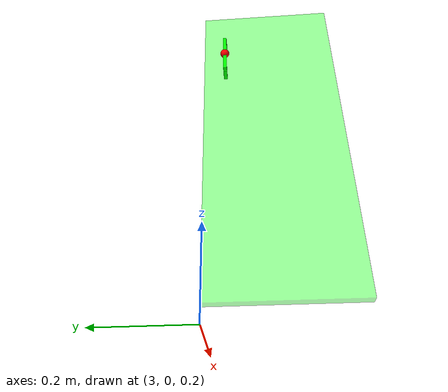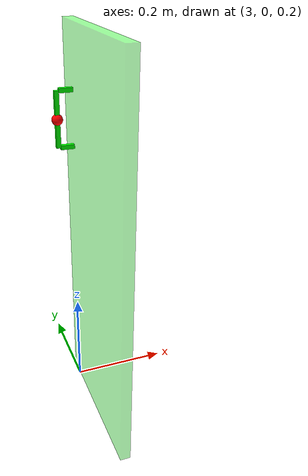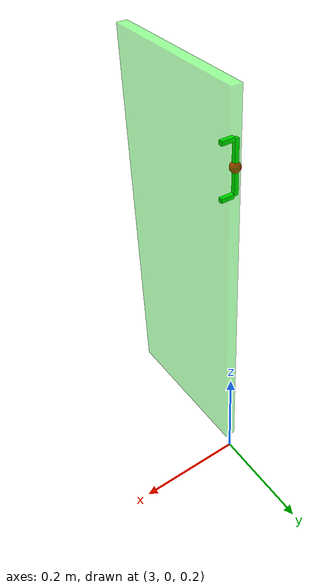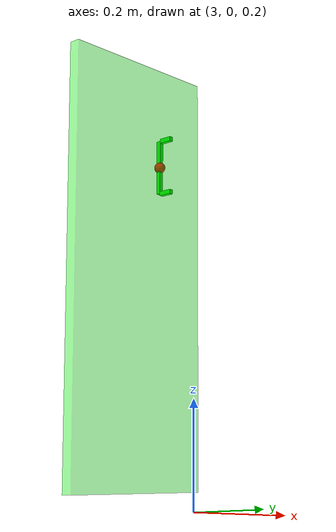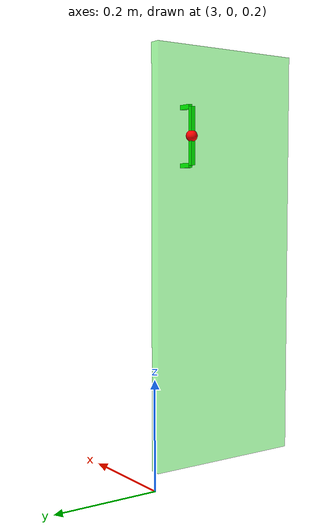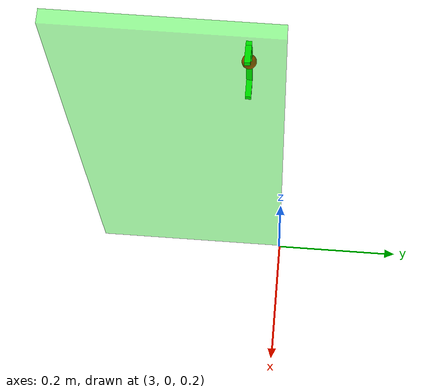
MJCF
<?xml version="1.0"?>
<mujoco model="door">
  <worldbody>
    <!-- Bare-bones door: just the swinging panel. No frame, no handle geom. -->
    <body name="door_base" pos="3.0 0 0.61" mocap="true">

      <!-- Door panel with hinge -->
      <body name="handle" pos="0 0 0">
        <joint
          name="door_hinge"
          type="hinge"
          axis="0 0 1"
          pos="0 -0.3 0"
          range="0 90"
          limited="true"
          damping="0.1"/>

        <geom
          type="box"
          name="door_panel"
          size="0.01 0.15 0.375"
          pos="0 -0.15 0"
          condim="3"
          friction="1 0.03 0.003"
          rgba="0 1 0 0.4"
          contype="2"
          conaffinity="2"
          solref="0.01 1"/>

        <geom type="box" name="handle"           pos="-0.039  -0.05  0.215" size="0.004  0.004 0.05"   condim="3" friction="1 0.03 0.003" rgba="0 1 0 1" contype="2" conaffinity="2" solref="0.01 1"/>
        <geom type="box" name="connector_top"    pos="-0.0225 -0.05  0.265" size="0.0125 0.004 0.004" condim="3" friction="1 0.03 0.003" rgba="0 1 0 1" contype="2" conaffinity="2" solref="0.01 1"/>
        <geom type="box" name="connector_bottom" pos="-0.0225 -0.05  0.165" size="0.0125 0.004 0.004" condim="3" friction="1 0.03 0.003" rgba="0 1 0 1" contype="2" conaffinity="2" solref="0.01 1"/>

        <!-- Object site at the handle bar center (kept for obs/reward code) -->
        <site
          name="object_site"
          pos="-0.039 -0.05 0.215"
          size="0.01 0.01 0.01"
          rgba="1 0 0 1"/>
      </body>
    </body>
  </worldbody>
</mujoco>
